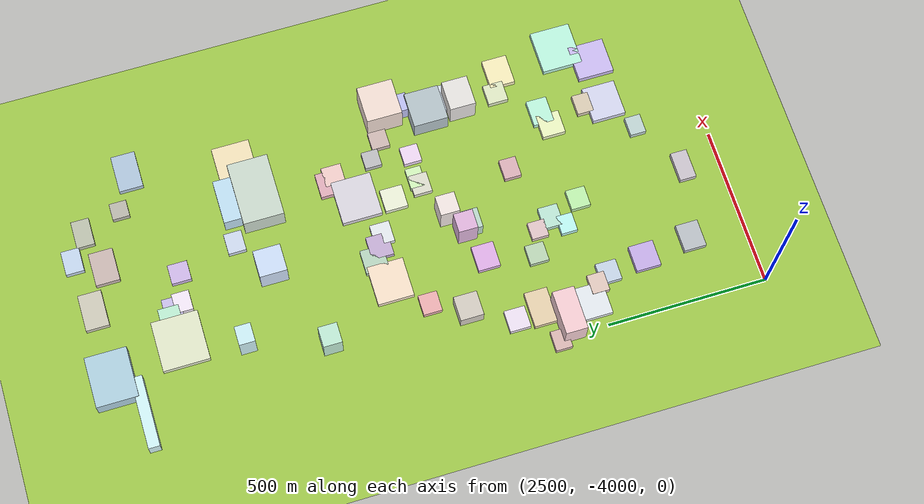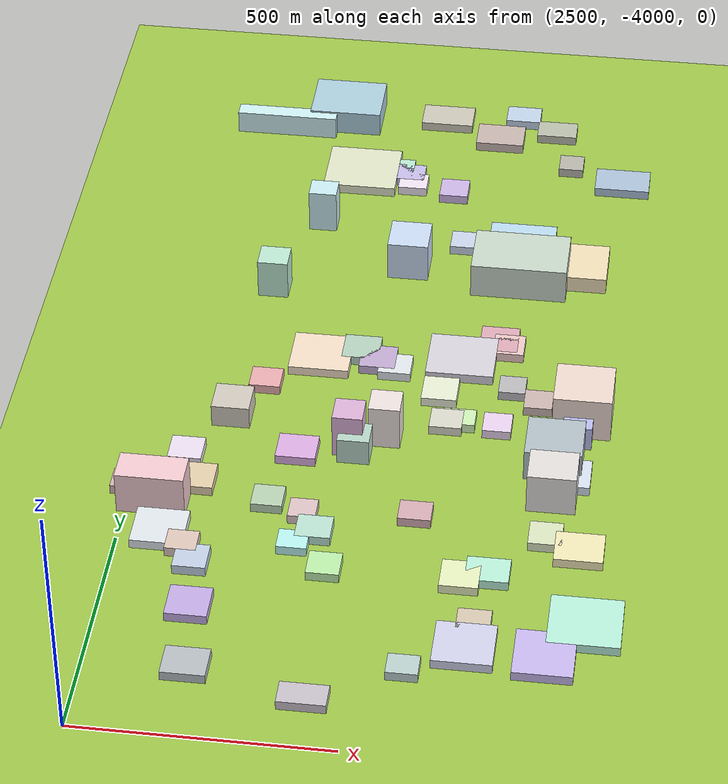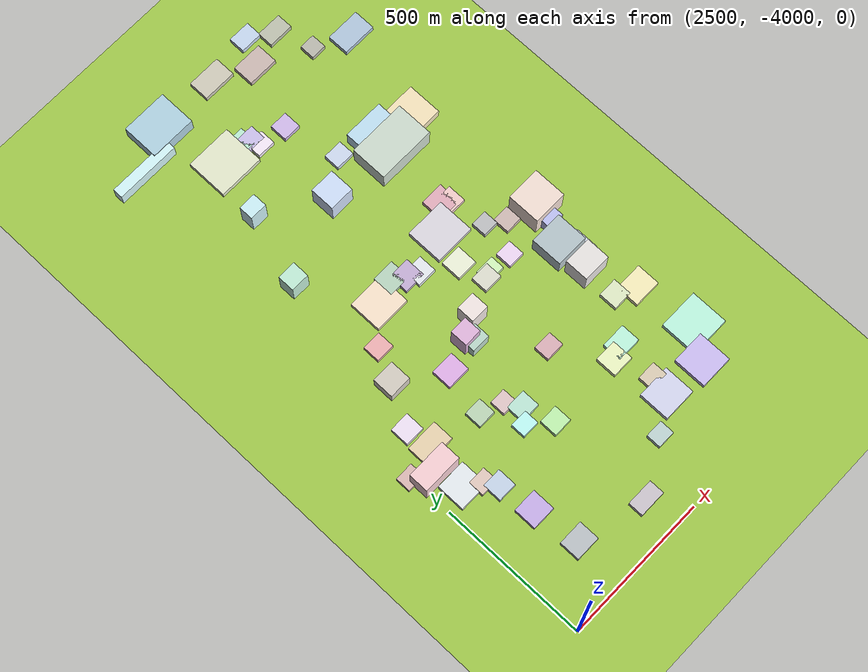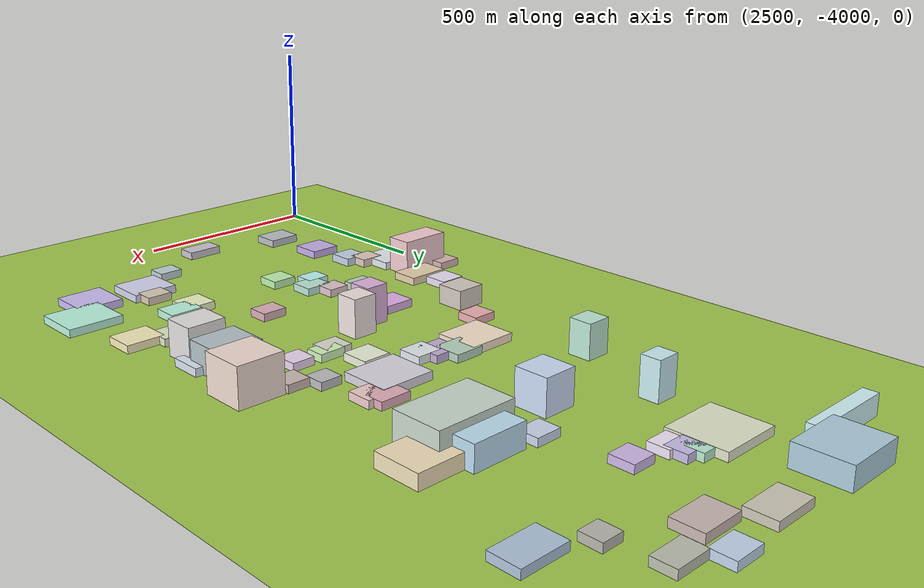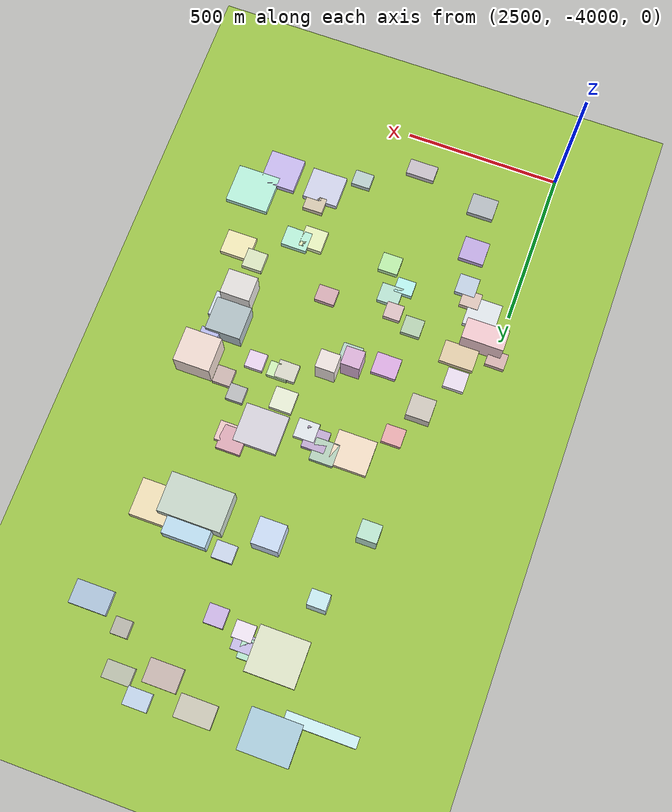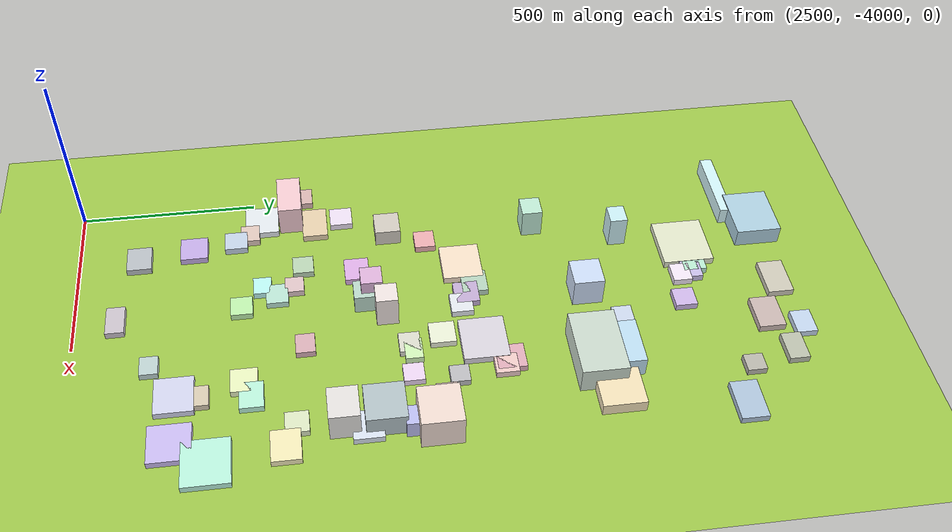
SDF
<sdf version="1.9">
 <world name="city_map">
  <model name="ground_plane">
   <static>1</static>
   <link name="link">
    <collision name="collision">
     <geometry><plane><normal>0 0 1</normal><size>11000 11000</size></plane></geometry>
    </collision>
    <visual name="visual">
     <geometry><plane><normal>0 0 1</normal><size>11000 11000</size></plane></geometry>
     <material>
      <ambient>0.551 0.712 0.210 1</ambient>
      <diffuse>0.651 0.812 0.310 1</diffuse>
      <specular>0.1 0.1 0.05 1</specular>
     </material>
    </visual>
   </link>
  </model>
  <model name="building_820799062">
   <static>1</static>
   <pose>3198.5259221905694 -2600.2883052691195 38.90549375745029 0 0 0</pose>
   <link name="link">
    <collision name="collision">
     <geometry><box><size>201.4091957852101 126.56220000020113 77.81098751490057</size></box></geometry>
    </collision>
    <visual name="visual">
     <cast_shadows>false</cast_shadows>
     <geometry><box><size>201.4091957852101 126.56220000020113 77.81098751490057</size></box></geometry>
     <material>
      <ambient>0.717 0.777 0.724 1</ambient>
      <diffuse>0.817 0.877 0.824 1</diffuse>
      <specular>0.245 0.263 0.247 1</specular>
      <emissive>0.01 0.01 0.01 1</emissive>
     </material>
    </visual>
   </link>
  </model>
  <model name="building_193322267">
   <static>1</static>
   <pose>2816.7143150049437 -2262.6003828262383 10.5 0 0 0</pose>
   <link name="link">
    <collision name="collision">
     <geometry><box><size>157.74210000019195 144.04531904951838 21.0</size></box></geometry>
    </collision>
    <visual name="visual">
     <cast_shadows>false</cast_shadows>
     <geometry><box><size>157.74210000019195 144.04531904951838 21.0</size></box></geometry>
     <material>
      <ambient>0.811 0.833 0.719 1</ambient>
      <diffuse>0.911 0.933 0.819 1</diffuse>
      <specular>0.273 0.280 0.246 1</specular>
      <emissive>0.01 0.01 0.01 1</emissive>
     </material>
    </visual>
   </link>
  </model>
  <model name="building_227003293">
   <static>1</static>
   <pose>2755.3304316372355 -2042.1860076679204 27.24662194095261 0 0 0</pose>
   <link name="link">
    <collision name="collision">
     <geometry><box><size>157.74210000019195 128.0040373553865 54.49324388190522</size></box></geometry>
    </collision>
    <visual name="visual">
     <cast_shadows>false</cast_shadows>
     <geometry><box><size>157.74210000019195 128.0040373553865 54.49324388190522</size></box></geometry>
     <material>
      <ambient>0.605 0.741 0.802 1</ambient>
      <diffuse>0.705 0.841 0.902 1</diffuse>
      <specular>0.212 0.252 0.270 1</specular>
      <emissive>0.01 0.01 0.01 1</emissive>
     </material>
    </visual>
   </link>
  </model>
  <model name="building_514474622">
   <static>1</static>
   <pose>3413.9467336202656 -3635.5864320987785 10.0 0 0 0</pose>
   <link name="link">
    <collision name="collision">
     <geometry><box><size>138.53909999977532 127.05261490969195 20</size></box></geometry>
    </collision>
    <visual name="visual">
     <cast_shadows>false</cast_shadows>
     <geometry><box><size>138.53909999977532 127.05261490969195 20</size></box></geometry>
     <material>
      <ambient>0.656 0.887 0.801 1</ambient>
      <diffuse>0.756 0.987 0.901 1</diffuse>
      <specular>0.227 0.296 0.270 1</specular>
      <emissive>0.01 0.01 0.01 1</emissive>
     </material>
    </visual>
   </link>
  </model>
  <model name="building_360172534">
   <static>1</static>
   <pose>3104.6213638431473 -2890.511129726861 10.5 0 0 0</pose>
   <link name="link">
    <collision name="collision">
     <geometry><box><size>139.130528034913 125.49659999957896 21.0</size></box></geometry>
    </collision>
    <visual name="visual">
     <cast_shadows>false</cast_shadows>
     <geometry><box><size>139.130528034913 125.49659999957896 21.0</size></box></geometry>
     <material>
      <ambient>0.779 0.764 0.801 1</ambient>
      <diffuse>0.879 0.864 0.901 1</diffuse>
      <specular>0.264 0.259 0.270 1</specular>
      <emissive>0.01 0.01 0.01 1</emissive>
     </material>
    </visual>
   </link>
  </model>
  <model name="building_925936">
   <static>1</static>
   <pose>3318.8623318397244 -2564.2043511727593 18.04592588511561 0 0 0</pose>
   <link name="link">
    <collision name="collision">
     <geometry><box><size>125.78832380763946 118.1151000000753 36.09185177023122</size></box></geometry>
    </collision>
    <visual name="visual">
     <cast_shadows>false</cast_shadows>
     <geometry><box><size>125.78832380763946 118.1151000000753 36.09185177023122</size></box></geometry>
     <material>
      <ambient>0.881 0.814 0.656 1</ambient>
      <diffuse>0.981 0.914 0.756 1</diffuse>
      <specular>0.294 0.274 0.227 1</specular>
      <emissive>0.01 0.01 0.01 1</emissive>
     </material>
    </visual>
   </link>
  </model>
  <model name="building_866636865">
   <static>1</static>
   <pose>2816.454313349304 -2913.8371998999583 10.0 0 0 0</pose>
   <link name="link">
    <collision name="collision">
     <geometry><box><size>124.02015107172969 112.69829999987024 20</size></box></geometry>
    </collision>
    <visual name="visual">
     <cast_shadows>false</cast_shadows>
     <geometry><box><size>124.02015107172969 112.69829999987024 20</size></box></geometry>
     <material>
      <ambient>0.897 0.811 0.718 1</ambient>
      <diffuse>0.997 0.911 0.818 1</diffuse>
      <specular>0.299 0.273 0.245 1</specular>
      <emissive>0.01 0.01 0.01 1</emissive>
     </material>
    </visual>
   </link>
  </model>
  <model name="building_616895335">
   <static>1</static>
   <pose>3364.934305585343 -3041.411046576958 48.78711392190627 0 0 0</pose>
   <link name="link">
    <collision name="collision">
     <geometry><box><size>117.58230000015857 111.9183806262184 97.57422784381254</size></box></geometry>
    </collision>
    <visual name="visual">
     <cast_shadows>false</cast_shadows>
     <geometry><box><size>117.58230000015857 111.9183806262184 97.57422784381254</size></box></geometry>
     <material>
      <ambient>0.876 0.794 0.752 1</ambient>
      <diffuse>0.976 0.894 0.852 1</diffuse>
      <specular>0.293 0.268 0.256 1</specular>
      <emissive>0.01 0.01 0.01 1</emissive>
     </material>
    </visual>
   </link>
  </model>
  <model name="building_867604188">
   <static>1</static>
   <pose>3345.2290703681592 -3727.75109949558 10.0 0 0 0</pose>
   <link name="link">
    <collision name="collision">
     <geometry><box><size>114.01920000032106 113.85432592459645 20</size></box></geometry>
    </collision>
    <visual name="visual">
     <cast_shadows>false</cast_shadows>
     <geometry><box><size>114.01920000032106 113.85432592459645 20</size></box></geometry>
     <material>
      <ambient>0.720 0.663 0.876 1</ambient>
      <diffuse>0.820 0.763 0.976 1</diffuse>
      <specular>0.246 0.229 0.293 1</specular>
      <emissive>0.01 0.01 0.01 1</emissive>
     </material>
    </visual>
   </link>
  </model>
  <model name="building_701919242">
   <static>1</static>
   <pose>3195.635340450379 -2526.269588740869 30.143880471730004 0 0 0</pose>
   <link name="link">
    <collision name="collision">
     <geometry><box><size>140.10709896764706 89.38830000035836 60.28776094346001</size></box></geometry>
    </collision>
    <visual name="visual">
     <cast_shadows>false</cast_shadows>
     <geometry><box><size>140.10709896764706 89.38830000035836 60.28776094346001</size></box></geometry>
     <material>
      <ambient>0.668 0.801 0.876 1</ambient>
      <diffuse>0.768 0.901 0.976 1</diffuse>
      <specular>0.230 0.270 0.293 1</specular>
      <emissive>0.01 0.01 0.01 1</emissive>
     </material>
    </visual>
   </link>
  </model>
  <model name="building_134325877">
   <static>1</static>
   <pose>3318.2334567907187 -3177.278644844502 34.500290835098355 0 0 0</pose>
   <link name="link">
    <collision name="collision">
     <geometry><box><size>113.94957292559126 108.46920000013682 69.00058167019671</size></box></geometry>
    </collision>
    <visual name="visual">
     <cast_shadows>false</cast_shadows>
     <geometry><box><size>113.94957292559126 108.46920000013682 69.00058167019671</size></box></geometry>
     <material>
      <ambient>0.626 0.686 0.708 1</ambient>
      <diffuse>0.726 0.786 0.808 1</diffuse>
      <specular>0.218 0.236 0.242 1</specular>
      <emissive>0.01 0.01 0.01 1</emissive>
     </material>
    </visual>
   </link>
  </model>
  <model name="building_260466636">
   <static>1</static>
   <pose>3196.1812770645465 -3719.7679565255917 10.0 0 0 0</pose>
   <link name="link">
    <collision name="collision">
     <geometry><box><size>114.46910617615677 105.28349999997744 20</size></box></geometry>
    </collision>
    <visual name="visual">
     <cast_shadows>false</cast_shadows>
     <geometry><box><size>114.46910617615677 105.28349999997744 20</size></box></geometry>
     <material>
      <ambient>0.758 0.766 0.864 1</ambient>
      <diffuse>0.858 0.866 0.964 1</diffuse>
      <specular>0.257 0.260 0.289 1</specular>
      <emissive>0.01 0.01 0.01 1</emissive>
     </material>
    </visual>
   </link>
  </model>
  <model name="building_255829521">
   <static>1</static>
   <pose>2581.3989476869374 -3474.86210812795 10.0 0 0 0</pose>
   <link name="link">
    <collision name="collision">
     <geometry><box><size>102.90810000061157 96.25452157633508 20</size></box></geometry>
    </collision>
    <visual name="visual">
     <cast_shadows>false</cast_shadows>
     <geometry><box><size>102.90810000061157 96.25452157633508 20</size></box></geometry>
     <material>
      <ambient>0.820 0.844 0.865 1</ambient>
      <diffuse>0.920 0.944 0.965 1</diffuse>
      <specular>0.276 0.283 0.290 1</specular>
      <emissive>0.01 0.01 0.01 1</emissive>
     </material>
    </visual>
   </link>
  </model>
  <model name="building_89238854">
   <static>1</static>
   <pose>2553.0473142706574 -3389.08533566538 45.79307164000474 0 0 0</pose>
   <link name="link">
    <collision name="collision">
     <geometry><box><size>135.02039999966797 67.72398902646299 91.58614328000948</size></box></geometry>
    </collision>
    <visual name="visual">
     <cast_shadows>false</cast_shadows>
     <geometry><box><size>135.02039999966797 67.72398902646299 91.58614328000948</size></box></geometry>
     <material>
      <ambient>0.890 0.731 0.754 1</ambient>
      <diffuse>0.990 0.831 0.854 1</diffuse>
      <specular>0.297 0.249 0.256 1</specular>
      <emissive>0.01 0.01 0.01 1</emissive>
     </material>
    </visual>
   </link>
  </model>
  <model name="building_804262957">
   <static>1</static>
   <pose>3392.5714661436136 -2238.60517388963 10.0 0 0 0</pose>
   <link name="link">
    <collision name="collision">
     <geometry><box><size>118.56300734236116 74.7474000004118 20</size></box></geometry>
    </collision>
    <visual name="visual">
     <cast_shadows>false</cast_shadows>
     <geometry><box><size>118.56300734236116 74.7474000004118 20</size></box></geometry>
     <material>
      <ambient>0.610 0.696 0.785 1</ambient>
      <diffuse>0.710 0.796 0.885 1</diffuse>
      <specular>0.213 0.239 0.266 1</specular>
      <emissive>0.01 0.01 0.01 1</emissive>
     </material>
    </visual>
   </link>
  </model>
  <model name="building_255797813">
   <static>1</static>
   <pose>2983.441319793403 -2036.7330084644377 10.0 0 0 0</pose>
   <link name="link">
    <collision name="collision">
     <geometry><box><size>114.78775089567878 71.68380000010188 20</size></box></geometry>
    </collision>
    <visual name="visual">
     <cast_shadows>false</cast_shadows>
     <geometry><box><size>114.78775089567878 71.68380000010188 20</size></box></geometry>
     <material>
      <ambient>0.732 0.715 0.651 1</ambient>
      <diffuse>0.832 0.815 0.751 1</diffuse>
      <specular>0.249 0.244 0.225 1</specular>
      <emissive>0.01 0.01 0.01 1</emissive>
     </material>
    </visual>
   </link>
  </model>
  <model name="building_238843699">
   <static>1</static>
   <pose>2608.144877773546 -3321.065545788727 10.0 0 0 0</pose>
   <link name="link">
    <collision name="collision">
     <geometry><box><size>109.74898464261814 71.81700000008107 20</size></box></geometry>
    </collision>
    <visual name="visual">
     <cast_shadows>false</cast_shadows>
     <geometry><box><size>109.74898464261814 71.81700000008107 20</size></box></geometry>
     <material>
      <ambient>0.830 0.745 0.605 1</ambient>
      <diffuse>0.930 0.845 0.705 1</diffuse>
      <specular>0.279 0.254 0.211 1</specular>
      <emissive>0.01 0.01 0.01 1</emissive>
     </material>
    </visual>
   </link>
  </model>
  <model name="building_465500429">
   <static>1</static>
   <pose>3322.805494264007 -3283.772991290367 44.377895383880265 0 0 0</pose>
   <link name="link">
    <collision name="collision">
     <geometry><box><size>96.27808136601563 81.66269999998832 88.75579076776053</size></box></geometry>
    </collision>
    <visual name="visual">
     <cast_shadows>false</cast_shadows>
     <geometry><box><size>96.27808136601563 81.66269999998832 88.75579076776053</size></box></geometry>
     <material>
      <ambient>0.826 0.813 0.802 1</ambient>
      <diffuse>0.926 0.913 0.902 1</diffuse>
      <specular>0.278 0.274 0.270 1</specular>
      <emissive>0.01 0.01 0.01 1</emissive>
     </material>
    </visual>
   </link>
  </model>
  <model name="building_185755979">
   <static>1</static>
   <pose>2625.891158616951 -2111.76326781798 25.399354886820756 0 0 0</pose>
   <link name="link">
    <collision name="collision">
     <geometry><box><size>222.071977848426 35.24250000014462 50.79870977364151</size></box></geometry>
    </collision>
    <visual name="visual">
     <cast_shadows>false</cast_shadows>
     <geometry><box><size>222.071977848426 35.24250000014462 50.79870977364151</size></box></geometry>
     <material>
      <ambient>0.747 0.883 0.898 1</ambient>
      <diffuse>0.847 0.983 0.998 1</diffuse>
      <specular>0.254 0.295 0.299 1</specular>
      <emissive>0.01 0.01 0.01 1</emissive>
     </material>
    </visual>
   </link>
  </model>
  <model name="building_990601595">
   <static>1</static>
   <pose>3109.015680080802 -2099.467703478093 10.5 0 0 0</pose>
   <link name="link">
    <collision name="collision">
     <geometry><box><size>105.34293344926608 74.19240000023564 21.0</size></box></geometry>
    </collision>
    <visual name="visual">
     <cast_shadows>false</cast_shadows>
     <geometry><box><size>105.34293344926608 74.19240000023564 21.0</size></box></geometry>
     <material>
      <ambient>0.718 0.644 0.622 1</ambient>
      <diffuse>0.818 0.744 0.722 1</diffuse>
      <specular>0.245 0.223 0.217 1</specular>
      <emissive>0.01 0.01 0.01 1</emissive>
     </material>
    </visual>
   </link>
  </model>
  <model name="building_866490277">
   <static>1</static>
   <pose>3387.422796054131 -3435.683871606462 10.0 0 0 0</pose>
   <link name="link">
    <collision name="collision">
     <geometry><box><size>95.17245753805535 78.98759999948624 20</size></box></geometry>
    </collision>
    <visual name="visual">
     <cast_shadows>false</cast_shadows>
     <geometry><box><size>95.17245753805535 78.98759999948624 20</size></box></geometry>
     <material>
      <ambient>0.893 0.857 0.659 1</ambient>
      <diffuse>0.993 0.957 0.759 1</diffuse>
      <specular>0.298 0.287 0.228 1</specular>
      <emissive>0.01 0.01 0.01 1</emissive>
     </material>
    </visual>
   </link>
  </model>
  <model name="building_688387087">
   <static>1</static>
   <pose>2959.485306996828 -2581.7761854967657 43.80884166424795 0 0 0</pose>
   <link name="link">
    <collision name="collision">
     <geometry><box><size>85.77614835864755 85.01489999972733 87.6176833284959</size></box></geometry>
    </collision>
    <visual name="visual">
     <cast_shadows>false</cast_shadows>
     <geometry><box><size>85.77614835864755 85.01489999972733 87.6176833284959</size></box></geometry>
     <material>
      <ambient>0.728 0.796 0.898 1</ambient>
      <diffuse>0.828 0.896 0.998 1</diffuse>
      <specular>0.248 0.269 0.299 1</specular>
      <emissive>0.01 0.01 0.01 1</emissive>
     </material>
    </visual>
   </link>
  </model>
  <model name="building_377440515">
   <static>1</static>
   <pose>3350.676470633934 -3225.4560422009217 10.0 0 0 0</pose>
   <link name="link">
    <collision name="collision">
     <geometry><box><size>87.40939747533963 81.37410000055922 20</size></box></geometry>
    </collision>
    <visual name="visual">
     <cast_shadows>false</cast_shadows>
     <geometry><box><size>87.40939747533963 81.37410000055922 20</size></box></geometry>
     <material>
      <ambient>0.783 0.824 0.880 1</ambient>
      <diffuse>0.883 0.924 0.980 1</diffuse>
      <specular>0.265 0.277 0.294 1</specular>
      <emissive>0.01 0.01 0.01 1</emissive>
     </material>
    </visual>
   </link>
  </model>
  <model name="building_87824537">
   <static>1</static>
   <pose>2672.7573078105015 -3672.6810226842267 10.0 0 0 0</pose>
   <link name="link">
    <collision name="collision">
     <geometry><box><size>81.43553326675637 77.58900000049351 20</size></box></geometry>
    </collision>
    <visual name="visual">
     <cast_shadows>false</cast_shadows>
     <geometry><box><size>81.43553326675637 77.58900000049351 20</size></box></geometry>
     <material>
      <ambient>0.699 0.606 0.836 1</ambient>
      <diffuse>0.799 0.706 0.936 1</diffuse>
      <specular>0.240 0.212 0.281 1</specular>
      <emissive>0.01 0.01 0.01 1</emissive>
     </material>
    </visual>
   </link>
  </model>
  <model name="building_775359890">
   <static>1</static>
   <pose>3175.943610927404 -2827.6557440913048 10.0 0 0 0</pose>
   <link name="link">
    <collision name="collision">
     <geometry><box><size>78.73230000044629 78.28555537813666 20</size></box></geometry>
    </collision>
    <visual name="visual">
     <cast_shadows>false</cast_shadows>
     <geometry><box><size>78.73230000044629 78.28555537813666 20</size></box></geometry>
     <material>
      <ambient>0.807 0.603 0.656 1</ambient>
      <diffuse>0.907 0.703 0.756 1</diffuse>
      <specular>0.272 0.211 0.227 1</specular>
      <emissive>0.01 0.01 0.01 1</emissive>
     </material>
    </visual>
   </link>
  </model>
  <model name="building_112989660">
   <static>1</static>
   <pose>2694.3275088605214 -3828.5496070511495 10.0 0 0 0</pose>
   <link name="link">
    <collision name="collision">
     <geometry><box><size>85.31803658484269 69.98549999997294 20</size></box></geometry>
    </collision>
    <visual name="visual">
     <cast_shadows>false</cast_shadows>
     <geometry><box><size>85.31803658484269 69.98549999997294 20</size></box></geometry>
     <material>
      <ambient>0.652 0.676 0.697 1</ambient>
      <diffuse>0.752 0.776 0.797 1</diffuse>
      <specular>0.225 0.233 0.239 1</specular>
      <emissive>0.01 0.01 0.01 1</emissive>
     </material>
    </visual>
   </link>
  </model>
  <model name="building_105063547">
   <static>1</static>
   <pose>2664.6664421031146 -3111.7344246864905 24.75 0 0 0</pose>
   <link name="link">
    <collision name="collision">
     <geometry><box><size>76.75650000022927 72.8497233540689 49.5</size></box></geometry>
    </collision>
    <visual name="visual">
     <cast_shadows>false</cast_shadows>
     <geometry><box><size>76.75650000022927 72.8497233540689 49.5</size></box></geometry>
     <material>
      <ambient>0.749 0.720 0.678 1</ambient>
      <diffuse>0.849 0.820 0.778 1</diffuse>
      <specular>0.255 0.246 0.233 1</specular>
      <emissive>0.01 0.01 0.01 1</emissive>
     </material>
    </visual>
   </link>
  </model>
  <model name="building_574319814">
   <static>1</static>
   <pose>2810.0223482835218 -3212.316166231181 10.0 0 0 0</pose>
   <link name="link">
    <collision name="collision">
     <geometry><box><size>80.01528912618062 69.03089999985923 20</size></box></geometry>
    </collision>
    <visual name="visual">
     <cast_shadows>false</cast_shadows>
     <geometry><box><size>80.01528912618062 69.03089999985923 20</size></box></geometry>
     <material>
      <ambient>0.800 0.612 0.832 1</ambient>
      <diffuse>0.900 0.712 0.932 1</diffuse>
      <specular>0.270 0.214 0.280 1</specular>
      <emissive>0.01 0.01 0.01 1</emissive>
     </material>
    </visual>
   </link>
  </model>
  <model name="building_51356314">
   <static>1</static>
   <pose>2896.8695606188044 -2887.1404408505177 10.0 0 0 0</pose>
   <link name="link">
    <collision name="collision">
     <geometry><box><size>76.18480700177818 71.71710000049103 20</size></box></geometry>
    </collision>
    <visual name="visual">
     <cast_shadows>false</cast_shadows>
     <geometry><box><size>76.18480700177818 71.71710000049103 20</size></box></geometry>
     <material>
      <ambient>0.644 0.757 0.674 1</ambient>
      <diffuse>0.744 0.857 0.774 1</diffuse>
      <specular>0.223 0.257 0.232 1</specular>
      <emissive>0.01 0.01 0.01 1</emissive>
     </material>
    </visual>
   </link>
  </model>
  <model name="building_4821098">
   <static>1</static>
   <pose>3169.137943149972 -3537.201425754713 10.0 0 0 0</pose>
   <link name="link">
    <collision name="collision">
     <geometry><box><size>75.12705022410756 72.64949999955661 20</size></box></geometry>
    </collision>
    <visual name="visual">
     <cast_shadows>false</cast_shadows>
     <geometry><box><size>75.12705022410756 72.64949999955661 20</size></box></geometry>
     <material>
      <ambient>0.851 0.890 0.684 1</ambient>
      <diffuse>0.951 0.990 0.784 1</diffuse>
      <specular>0.285 0.297 0.235 1</specular>
      <emissive>0.01 0.01 0.01 1</emissive>
     </material>
    </visual>
   </link>
  </model>
  <model name="building_14629309">
   <static>1</static>
   <pose>3220.030390384196 -3519.0115573477306 10.0 0 0 0</pose>
   <link name="link">
    <collision name="collision">
     <geometry><box><size>83.98764335073612 64.83510000051496 20</size></box></geometry>
    </collision>
    <visual name="visual">
     <cast_shadows>false</cast_shadows>
     <geometry><box><size>83.98764335073612 64.83510000051496 20</size></box></geometry>
     <material>
      <ambient>0.661 0.888 0.792 1</ambient>
      <diffuse>0.761 0.988 0.892 1</diffuse>
      <specular>0.228 0.296 0.268 1</specular>
      <emissive>0.01 0.01 0.01 1</emissive>
     </material>
    </visual>
   </link>
  </model>
  <model name="building_454400010">
   <static>1</static>
   <pose>2934.4734717305787 -2914.813769343624 10.0 0 0 0</pose>
   <link name="link">
    <collision name="collision">
     <geometry><box><size>73.92600000027727 69.2918277361477 20</size></box></geometry>
    </collision>
    <visual name="visual">
     <cast_shadows>false</cast_shadows>
     <geometry><box><size>73.92600000027727 69.2918277361477 20</size></box></geometry>
     <material>
      <ambient>0.693 0.605 0.761 1</ambient>
      <diffuse>0.793 0.705 0.861 1</diffuse>
      <specular>0.238 0.211 0.258 1</specular>
      <emissive>0.01 0.01 0.01 1</emissive>
     </material>
    </visual>
   </link>
  </model>
  <model name="building_708957084">
   <static>1</static>
   <pose>3071.6779398094523 -2999.755900851759 10.0 0 0 0</pose>
   <link name="link">
    <collision name="collision">
     <geometry><box><size>72.03028539650325 70.9734000004758 20</size></box></geometry>
    </collision>
    <visual name="visual">
     <cast_shadows>false</cast_shadows>
     <geometry><box><size>72.03028539650325 70.9734000004758 20</size></box></geometry>
     <material>
      <ambient>0.850 0.871 0.776 1</ambient>
      <diffuse>0.950 0.971 0.876 1</diffuse>
      <specular>0.285 0.291 0.263 1</specular>
      <emissive>0.01 0.01 0.01 1</emissive>
     </material>
    </visual>
   </link>
  </model>
  <model name="building_221679484">
   <static>1</static>
   <pose>3234.155434673218 -2062.206901310623 10.0 0 0 0</pose>
   <link name="link">
    <collision name="collision">
     <geometry><box><size>87.39536227226645 55.55550000012488 20</size></box></geometry>
    </collision>
    <visual name="visual">
     <cast_shadows>false</cast_shadows>
     <geometry><box><size>87.39536227226645 55.55550000012488 20</size></box></geometry>
     <material>
      <ambient>0.662 0.678 0.605 1</ambient>
      <diffuse>0.762 0.778 0.705 1</diffuse>
      <specular>0.229 0.233 0.211 1</specular>
      <emissive>0.01 0.01 0.01 1</emissive>
     </material>
    </visual>
   </link>
  </model>
  <model name="building_369796178">
   <static>1</static>
   <pose>2919.8071818399503 -3884.9401405083026 10.0 0 0 0</pose>
   <link name="link">
    <collision name="collision">
     <geometry><box><size>92.74050000009737 51.79168659900735 20</size></box></geometry>
    </collision>
    <visual name="visual">
     <cast_shadows>false</cast_shadows>
     <geometry><box><size>92.74050000009737 51.79168659900735 20</size></box></geometry>
     <material>
      <ambient>0.719 0.690 0.726 1</ambient>
      <diffuse>0.819 0.790 0.826 1</diffuse>
      <specular>0.246 0.237 0.248 1</specular>
      <emissive>0.01 0.01 0.01 1</emissive>
     </material>
    </visual>
   </link>
  </model>
  <model name="building_992371193">
   <static>1</static>
   <pose>2592.693140917838 -3242.6153011420242 10.0 0 0 0</pose>
   <link name="link">
    <collision name="collision">
     <geometry><box><size>67.47177495122536 64.7241000000065 20</size></box></geometry>
    </collision>
    <visual name="visual">
     <cast_shadows>false</cast_shadows>
     <geometry><box><size>67.47177495122536 64.7241000000065 20</size></box></geometry>
     <material>
      <ambient>0.858 0.810 0.882 1</ambient>
      <diffuse>0.958 0.910 0.982 1</diffuse>
      <specular>0.287 0.273 0.295 1</specular>
      <emissive>0.01 0.01 0.01 1</emissive>
     </material>
    </visual>
   </link>
  </model>
  <model name="building_345663137">
   <static>1</static>
   <pose>2895.914732080186 -2251.994106661555 10.0 0 0 0</pose>
   <link name="link">
    <collision name="collision">
     <geometry><box><size>67.21049999988082 64.03208879740903 20</size></box></geometry>
    </collision>
    <visual name="visual">
     <cast_shadows>false</cast_shadows>
     <geometry><box><size>67.21049999988082 64.03208879740903 20</size></box></geometry>
     <material>
      <ambient>0.659 0.855 0.751 1</ambient>
      <diffuse>0.759 0.955 0.851 1</diffuse>
      <specular>0.228 0.286 0.255 1</specular>
      <emissive>0.01 0.01 0.01 1</emissive>
     </material>
    </visual>
   </link>
  </model>
  <model name="building_790412395">
   <static>1</static>
   <pose>3154.1043268936273 -2011.9361976849898 10.0 0 0 0</pose>
   <link name="link">
    <collision name="collision">
     <geometry><box><size>76.2117607902695 56.39910000051884 20</size></box></geometry>
    </collision>
    <visual name="visual">
     <cast_shadows>false</cast_shadows>
     <geometry><box><size>76.2117607902695 56.39910000051884 20</size></box></geometry>
     <material>
      <ambient>0.694 0.768 0.860 1</ambient>
      <diffuse>0.794 0.868 0.960 1</diffuse>
      <specular>0.238 0.260 0.288 1</specular>
      <emissive>0.01 0.01 0.01 1</emissive>
     </material>
    </visual>
   </link>
  </model>
  <model name="building_276417448">
   <static>1</static>
   <pose>2876.4797286508833 -3440.373501382131 10.0 0 0 0</pose>
   <link name="link">
    <collision name="collision">
     <geometry><box><size>69.3062278619842 61.54949999997683 20</size></box></geometry>
    </collision>
    <visual name="visual">
     <cast_shadows>false</cast_shadows>
     <geometry><box><size>69.3062278619842 61.54949999997683 20</size></box></geometry>
     <material>
      <ambient>0.660 0.828 0.762 1</ambient>
      <diffuse>0.760 0.928 0.862 1</diffuse>
      <specular>0.228 0.278 0.259 1</specular>
      <emissive>0.01 0.01 0.01 1</emissive>
     </material>
    </visual>
   </link>
  </model>
  <model name="building_814313436">
   <static>1</static>
   <pose>2656.212531393331 -3551.5442014983737 10.5 0 0 0</pose>
   <link name="link">
    <collision name="collision">
     <geometry><box><size>65.05624212949027 64.51319999990801 21.0</size></box></geometry>
    </collision>
    <visual name="visual">
     <cast_shadows>false</cast_shadows>
     <geometry><box><size>65.05624212949027 64.51319999990801 21.0</size></box></geometry>
     <material>
      <ambient>0.697 0.757 0.834 1</ambient>
      <diffuse>0.797 0.857 0.934 1</diffuse>
      <specular>0.239 0.257 0.280 1</specular>
      <emissive>0.01 0.01 0.01 1</emissive>
     </material>
    </visual>
   </link>
  </model>
  <model name="building_420522079">
   <static>1</static>
   <pose>2971.7474793696815 -2933.0950095331573 10.0 0 0 0</pose>
   <link name="link">
    <collision name="collision">
     <geometry><box><size>67.08840000003136 61.66890748881607 20</size></box></geometry>
    </collision>
    <visual name="visual">
     <cast_shadows>false</cast_shadows>
     <geometry><box><size>67.08840000003136 61.66890748881607 20</size></box></geometry>
     <material>
      <ambient>0.821 0.843 0.863 1</ambient>
      <diffuse>0.921 0.943 0.963 1</diffuse>
      <specular>0.276 0.283 0.289 1</specular>
      <emissive>0.01 0.01 0.01 1</emissive>
     </material>
    </visual>
   </link>
  </model>
  <model name="building_339687453">
   <static>1</static>
   <pose>3320.3035363967083 -3404.945843048612 10.0 0 0 0</pose>
   <link name="link">
    <collision name="collision">
     <geometry><box><size>65.2435076107048 63.19230000024589 20</size></box></geometry>
    </collision>
    <visual name="visual">
     <cast_shadows>false</cast_shadows>
     <geometry><box><size>65.2435076107048 63.19230000024589 20</size></box></geometry>
     <material>
      <ambient>0.799 0.840 0.695 1</ambient>
      <diffuse>0.899 0.940 0.795 1</diffuse>
      <specular>0.270 0.282 0.239 1</specular>
      <emissive>0.01 0.01 0.01 1</emissive>
     </material>
    </visual>
   </link>
  </model>
  <model name="building_332651101">
   <static>1</static>
   <pose>3197.7545255010004 -2843.101690152251 10.0 0 0 0</pose>
   <link name="link">
    <collision name="collision">
     <geometry><box><size>63.32550000022508 62.647761407545325 20</size></box></geometry>
    </collision>
    <visual name="visual">
     <cast_shadows>false</cast_shadows>
     <geometry><box><size>63.32550000022508 62.647761407545325 20</size></box></geometry>
     <material>
      <ambient>0.873 0.729 0.717 1</ambient>
      <diffuse>0.973 0.829 0.817 1</diffuse>
      <specular>0.292 0.249 0.245 1</specular>
      <emissive>0.01 0.01 0.01 1</emissive>
     </material>
    </visual>
   </link>
  </model>
  <model name="building_377153032">
   <static>1</static>
   <pose>2909.874551045524 -3539.5107162882864 10.0 0 0 0</pose>
   <link name="link">
    <collision name="collision">
     <geometry><box><size>64.42740974437076 60.65039999972299 20</size></box></geometry>
    </collision>
    <visual name="visual">
     <cast_shadows>false</cast_shadows>
     <geometry><box><size>64.42740974437076 60.65039999972299 20</size></box></geometry>
     <material>
      <ambient>0.672 0.876 0.605 1</ambient>
      <diffuse>0.772 0.976 0.705 1</diffuse>
      <specular>0.232 0.293 0.212 1</specular>
      <emissive>0.01 0.01 0.01 1</emissive>
     </material>
    </visual>
   </link>
  </model>
  <model name="building_411660024">
   <static>1</static>
   <pose>2977.91357070328 -3141.5968201372575 48.522260401488005 0 0 0</pose>
   <link name="link">
    <collision name="collision">
     <geometry><box><size>63.403200000344384 60.542766787984355 97.04452080297601</size></box></geometry>
    </collision>
    <visual name="visual">
     <cast_shadows>false</cast_shadows>
     <geometry><box><size>63.403200000344384 60.542766787984355 97.04452080297601</size></box></geometry>
     <material>
      <ambient>0.869 0.823 0.812 1</ambient>
      <diffuse>0.969 0.923 0.912 1</diffuse>
      <specular>0.291 0.277 0.274 1</specular>
      <emissive>0.01 0.01 0.01 1</emissive>
     </material>
    </visual>
   </link>
  </model>
  <model name="building_641939861">
   <static>1</static>
   <pose>3094.352077891581 -3091.470539239853 10.0 0 0 0</pose>
   <link name="link">
    <collision name="collision">
     <geometry><box><size>65.49602556331787 57.78660000017055 20</size></box></geometry>
    </collision>
    <visual name="visual">
     <cast_shadows>false</cast_shadows>
     <geometry><box><size>65.49602556331787 57.78660000017055 20</size></box></geometry>
     <material>
      <ambient>0.791 0.789 0.732 1</ambient>
      <diffuse>0.891 0.889 0.832 1</diffuse>
      <specular>0.267 0.267 0.250 1</specular>
      <emissive>0.01 0.01 0.01 1</emissive>
     </material>
    </visual>
   </link>
  </model>
  <model name="building_405478167">
   <static>1</static>
   <pose>3026.9383748621744 -2312.3693863410163 10.0 0 0 0</pose>
   <link name="link">
    <collision name="collision">
     <geometry><box><size>61.674553313315634 60.99449999980067 20</size></box></geometry>
    </collision>
    <visual name="visual">
     <cast_shadows>false</cast_shadows>
     <geometry><box><size>61.674553313315634 60.99449999980067 20</size></box></geometry>
     <material>
      <ambient>0.737 0.647 0.840 1</ambient>
      <diffuse>0.837 0.747 0.940 1</diffuse>
      <specular>0.251 0.224 0.282 1</specular>
      <emissive>0.01 0.01 0.01 1</emissive>
     </material>
    </visual>
   </link>
  </model>
  <model name="building_21191570">
   <static>1</static>
   <pose>2715.713043806029 -3007.6150620059348 10.0 0 0 0</pose>
   <link name="link">
    <collision name="collision">
     <geometry><box><size>63.491999999804705 58.628562076700355 20</size></box></geometry>
    </collision>
    <visual name="visual">
     <cast_shadows>false</cast_shadows>
     <geometry><box><size>63.491999999804705 58.628562076700355 20</size></box></geometry>
     <material>
      <ambient>0.854 0.610 0.621 1</ambient>
      <diffuse>0.954 0.710 0.721 1</diffuse>
      <specular>0.286 0.213 0.216 1</specular>
      <emissive>0.01 0.01 0.01 1</emissive>
     </material>
    </visual>
   </link>
  </model>
  <model name="building_255978362">
   <static>1</static>
   <pose>2923.228823730874 -3199.3676096856516 28.908399753760982 0 0 0</pose>
   <link name="link">
    <collision name="collision">
     <geometry><box><size>64.15800000048932 58.01580553601931 57.816799507521964</size></box></geometry>
    </collision>
    <visual name="visual">
     <cast_shadows>false</cast_shadows>
     <geometry><box><size>64.15800000048932 58.01580553601931 57.816799507521964</size></box></geometry>
     <material>
      <ambient>0.655 0.773 0.716 1</ambient>
      <diffuse>0.755 0.873 0.816 1</diffuse>
      <specular>0.226 0.262 0.245 1</specular>
      <emissive>0.01 0.01 0.01 1</emissive>
     </material>
    </visual>
   </link>
  </model>
  <model name="building_273901553">
   <static>1</static>
   <pose>2684.7307070172374 -2690.224933422929 43.69403753580844 0 0 0</pose>
   <link name="link">
    <collision name="collision">
     <geometry><box><size>63.476791083880606 58.39710000020659 87.38807507161688</size></box></geometry>
    </collision>
    <visual name="visual">
     <cast_shadows>false</cast_shadows>
     <geometry><box><size>63.476791083880606 58.39710000020659 87.38807507161688</size></box></geometry>
     <material>
      <ambient>0.672 0.844 0.759 1</ambient>
      <diffuse>0.772 0.944 0.859 1</diffuse>
      <specular>0.231 0.283 0.258 1</specular>
      <emissive>0.01 0.01 0.01 1</emissive>
     </material>
    </visual>
   </link>
  </model>
  <model name="building_805905501">
   <static>1</static>
   <pose>3072.760003173692 -2497.5205707790647 10.0 0 0 0</pose>
   <link name="link">
    <collision name="collision">
     <geometry><box><size>65.8119000000994 55.56116326729334 20</size></box></geometry>
    </collision>
    <visual name="visual">
     <cast_shadows>false</cast_shadows>
     <geometry><box><size>65.8119000000994 55.56116326729334 20</size></box></geometry>
     <material>
      <ambient>0.730 0.776 0.861 1</ambient>
      <diffuse>0.830 0.876 0.961 1</diffuse>
      <specular>0.249 0.263 0.288 1</specular>
      <emissive>0.01 0.01 0.01 1</emissive>
     </material>
    </visual>
   </link>
  </model>
  <model name="building_259374053">
   <static>1</static>
   <pose>2909.258321106622 -3177.2829785959702 48.39380516133414 0 0 0</pose>
   <link name="link">
    <collision name="collision">
     <geometry><box><size>60.84068771251136 60.028799999557236 96.78761032266829</size></box></geometry>
    </collision>
    <visual name="visual">
     <cast_shadows>false</cast_shadows>
     <geometry><box><size>60.84068771251136 60.028799999557236 96.78761032266829</size></box></geometry>
     <material>
      <ambient>0.799 0.630 0.785 1</ambient>
      <diffuse>0.899 0.730 0.885 1</diffuse>
      <specular>0.270 0.219 0.265 1</specular>
      <emissive>0.01 0.01 0.01 1</emissive>
     </material>
    </visual>
   </link>
  </model>
  <model name="building_469375955">
   <static>1</static>
   <pose>2774.985096037724 -3363.0216155124385 10.0 0 0 0</pose>
   <link name="link">
    <collision name="collision">
     <geometry><box><size>61.68106263758208 58.91879999999361 20</size></box></geometry>
    </collision>
    <visual name="visual">
     <cast_shadows>false</cast_shadows>
     <geometry><box><size>61.68106263758208 58.91879999999361 20</size></box></geometry>
     <material>
      <ambient>0.657 0.762 0.639 1</ambient>
      <diffuse>0.757 0.862 0.739 1</diffuse>
      <specular>0.227 0.259 0.222 1</specular>
      <emissive>0.01 0.01 0.01 1</emissive>
     </material>
    </visual>
   </link>
  </model>
  <model name="building_631806056">
   <static>1</static>
   <pose>3064.5485256119946 -3371.0823581332907 10.0 0 0 0</pose>
   <link name="link">
    <collision name="collision">
     <geometry><box><size>64.99307631062575 53.2466999999599 20</size></box></geometry>
    </collision>
    <visual name="visual">
     <cast_shadows>false</cast_shadows>
     <geometry><box><size>64.99307631062575 53.2466999999599 20</size></box></geometry>
     <material>
      <ambient>0.780 0.613 0.646 1</ambient>
      <diffuse>0.880 0.713 0.746 1</diffuse>
      <specular>0.264 0.214 0.224 1</specular>
      <emissive>0.01 0.01 0.01 1</emissive>
     </material>
    </visual>
   </link>
  </model>
  <model name="building_287329103">
   <static>1</static>
   <pose>2934.106075857804 -2297.7782954020868 10.0 0 0 0</pose>
   <link name="link">
    <collision name="collision">
     <geometry><box><size>62.548499999820706 53.693889829086864 20</size></box></geometry>
    </collision>
    <visual name="visual">
     <cast_shadows>false</cast_shadows>
     <geometry><box><size>62.548499999820706 53.693889829086864 20</size></box></geometry>
     <material>
      <ambient>0.881 0.837 0.898 1</ambient>
      <diffuse>0.981 0.937 0.998 1</diffuse>
      <specular>0.294 0.281 0.299 1</specular>
      <emissive>0.01 0.01 0.01 1</emissive>
     </material>
    </visual>
   </link>
  </model>
  <model name="building_21872129">
   <static>1</static>
   <pose>2925.784053930138 -2265.148144178139 10.0 0 0 0</pose>
   <link name="link">
    <collision name="collision">
     <geometry><box><size>60.672599999982424 54.86933777670386 20</size></box></geometry>
    </collision>
    <visual name="visual">
     <cast_shadows>false</cast_shadows>
     <geometry><box><size>60.672599999982424 54.86933777670386 20</size></box></geometry>
     <material>
      <ambient>0.717 0.675 0.847 1</ambient>
      <diffuse>0.817 0.775 0.947 1</diffuse>
      <specular>0.245 0.232 0.284 1</specular>
      <emissive>0.01 0.01 0.01 1</emissive>
     </material>
    </visual>
   </link>
  </model>
  <model name="building_585785899">
   <static>1</static>
   <pose>3207.4272750754362 -3654.6701290089586 10.0 0 0 0</pose>
   <link name="link">
    <collision name="collision">
     <geometry><box><size>64.5845273186653 51.39299999959235 20</size></box></geometry>
    </collision>
    <visual name="visual">
     <cast_shadows>false</cast_shadows>
     <geometry><box><size>64.5845273186653 51.39299999959235 20</size></box></geometry>
     <material>
      <ambient>0.778 0.723 0.628 1</ambient>
      <diffuse>0.878 0.823 0.728 1</diffuse>
      <specular>0.263 0.247 0.218 1</specular>
      <emissive>0.01 0.01 0.01 1</emissive>
     </material>
    </visual>
   </link>
  </model>
  <model name="building_968386118">
   <static>1</static>
   <pose>2631.2236988866644 -3510.1614141416912 10.5 0 0 0</pose>
   <link name="link">
    <collision name="collision">
     <geometry><box><size>61.25028966023304 53.65740000002717 21.0</size></box></geometry>
    </collision>
    <visual name="visual">
     <cast_shadows>false</cast_shadows>
     <geometry><box><size>61.25028966023304 53.65740000002717 21.0</size></box></geometry>
     <material>
      <ambient>0.810 0.711 0.668 1</ambient>
      <diffuse>0.910 0.811 0.768 1</diffuse>
      <specular>0.273 0.243 0.230 1</specular>
      <emissive>0.01 0.01 0.01 1</emissive>
     </material>
    </visual>
   </link>
  </model>
  <model name="building_795452096">
   <static>1</static>
   <pose>3358.96746960864 -3101.8509063971187 26.715736240812507 0 0 0</pose>
   <link name="link">
    <collision name="collision">
     <geometry><box><size>58.275000000357124 56.18989776672644 53.431472481625015</size></box></geometry>
    </collision>
    <visual name="visual">
     <cast_shadows>false</cast_shadows>
     <geometry><box><size>58.275000000357124 56.18989776672644 53.431472481625015</size></box></geometry>
     <material>
      <ambient>0.664 0.676 0.876 1</ambient>
      <diffuse>0.764 0.776 0.976 1</diffuse>
      <specular>0.229 0.233 0.293 1</specular>
      <emissive>0.01 0.01 0.01 1</emissive>
     </material>
    </visual>
   </link>
  </model>
  <model name="building_380671">
   <static>1</static>
   <pose>3197.1576105825384 -3091.20537022806 10.0 0 0 0</pose>
   <link name="link">
    <collision name="collision">
     <geometry><box><size>57.80880000042998 56.554721517696606 20</size></box></geometry>
    </collision>
    <visual name="visual">
     <cast_shadows>false</cast_shadows>
     <geometry><box><size>57.80880000042998 56.554721517696606 20</size></box></geometry>
     <material>
      <ambient>0.859 0.771 0.881 1</ambient>
      <diffuse>0.959 0.871 0.981 1</diffuse>
      <specular>0.288 0.261 0.294 1</specular>
      <emissive>0.01 0.01 0.01 1</emissive>
     </material>
    </visual>
   </link>
  </model>
  <model name="building_373914430">
   <static>1</static>
   <pose>3272.913932188441 -3010.6471168714156 10.0 0 0 0</pose>
   <link name="link">
    <collision name="collision">
     <geometry><box><size>57.708900000051244 56.43214051378644 20</size></box></geometry>
    </collision>
    <visual name="visual">
     <cast_shadows>false</cast_shadows>
     <geometry><box><size>57.708900000051244 56.43214051378644 20</size></box></geometry>
     <material>
      <ambient>0.735 0.647 0.628 1</ambient>
      <diffuse>0.835 0.747 0.728 1</diffuse>
      <specular>0.250 0.224 0.218 1</specular>
      <emissive>0.01 0.01 0.01 1</emissive>
     </material>
    </visual>
   </link>
  </model>
  <model name="building_924607703">
   <static>1</static>
   <pose>3118.7918534092732 -3083.13040766026 10.0 0 0 0</pose>
   <link name="link">
    <collision name="collision">
     <geometry><box><size>66.71100000035324 48.22821219801881 20</size></box></geometry>
    </collision>
    <visual name="visual">
     <cast_shadows>false</cast_shadows>
     <geometry><box><size>66.71100000035324 48.22821219801881 20</size></box></geometry>
     <material>
      <ambient>0.752 0.891 0.661 1</ambient>
      <diffuse>0.852 0.991 0.761 1</diffuse>
      <specular>0.256 0.297 0.228 1</specular>
      <emissive>0.01 0.01 0.01 1</emissive>
     </material>
    </visual>
   </link>
  </model>
  <model name="building_986192065">
   <static>1</static>
   <pose>2494.360201996519 -3348.3967645576604 10.0 0 0 0</pose>
   <link name="link">
    <collision name="collision">
     <geometry><box><size>61.9602000000441 51.441295335122845 20</size></box></geometry>
    </collision>
    <visual name="visual">
     <cast_shadows>false</cast_shadows>
     <geometry><box><size>61.9602000000441 51.441295335122845 20</size></box></geometry>
     <material>
      <ambient>0.781 0.642 0.629 1</ambient>
      <diffuse>0.881 0.742 0.729 1</diffuse>
      <specular>0.264 0.223 0.219 1</specular>
      <emissive>0.01 0.01 0.01 1</emissive>
     </material>
    </visual>
   </link>
  </model>
  <model name="building_477473491">
   <static>1</static>
   <pose>3090.5236062894 -3787.9697924560064 10.0 0 0 0</pose>
   <link name="link">
    <collision name="collision">
     <geometry><box><size>60.70589999958287 49.918240320675345 20</size></box></geometry>
    </collision>
    <visual name="visual">
     <cast_shadows>false</cast_shadows>
     <geometry><box><size>60.70589999958287 49.918240320675345 20</size></box></geometry>
     <material>
      <ambient>0.669 0.753 0.748 1</ambient>
      <diffuse>0.769 0.853 0.848 1</diffuse>
      <specular>0.231 0.256 0.254 1</specular>
      <emissive>0.01 0.01 0.01 1</emissive>
     </material>
    </visual>
   </link>
  </model>
  <model name="building_908195809">
   <static>1</static>
   <pose>2840.8162232552795 -3480.515642084693 10.0 0 0 0</pose>
   <link name="link">
    <collision name="collision">
     <geometry><box><size>59.26957128210778 50.42729999934892 20</size></box></geometry>
    </collision>
    <visual name="visual">
     <cast_shadows>false</cast_shadows>
     <geometry><box><size>59.26957128210778 50.42729999934892 20</size></box></geometry>
     <material>
      <ambient>0.662 0.900 0.882 1</ambient>
      <diffuse>0.762 1.000 0.982 1</diffuse>
      <specular>0.228 0.300 0.295 1</specular>
      <emissive>0.01 0.01 0.01 1</emissive>
     </material>
    </visual>
   </link>
  </model>
  <model name="building_547823789">
   <static>1</static>
   <pose>2756.468140962813 -2450.4637556774087 48.094528995978706 0 0 0</pose>
   <link name="link">
    <collision name="collision">
     <geometry><box><size>59.398940835431766 49.55040000014321 96.18905799195741</size></box></geometry>
    </collision>
    <visual name="visual">
     <cast_shadows>false</cast_shadows>
     <geometry><box><size>59.398940835431766 49.55040000014321 96.18905799195741</size></box></geometry>
     <material>
      <ambient>0.721 0.862 0.887 1</ambient>
      <diffuse>0.821 0.962 0.987 1</diffuse>
      <specular>0.246 0.289 0.296 1</specular>
      <emissive>0.01 0.01 0.01 1</emissive>
     </material>
    </visual>
   </link>
  </model>
  <model name="building_123462411">
   <static>1</static>
   <pose>2847.5296965103953 -3390.692169746905 10.0 0 0 0</pose>
   <link name="link">
    <collision name="collision">
     <geometry><box><size>54.58979999988145 52.62453249646767 20</size></box></geometry>
    </collision>
    <visual name="visual">
     <cast_shadows>false</cast_shadows>
     <geometry><box><size>54.58979999988145 52.62453249646767 20</size></box></geometry>
     <material>
      <ambient>0.804 0.698 0.706 1</ambient>
      <diffuse>0.904 0.798 0.806 1</diffuse>
      <specular>0.271 0.239 0.242 1</specular>
      <emissive>0.01 0.01 0.01 1</emissive>
     </material>
    </visual>
   </link>
  </model>
  <model name="building_543365340">
   <static>1</static>
   <pose>3216.4448876858114 -2970.809245095128 10.0 0 0 0</pose>
   <link name="link">
    <collision name="collision">
     <geometry><box><size>54.534300000021574 52.39027757094899 20</size></box></geometry>
    </collision>
    <visual name="visual">
     <cast_shadows>false</cast_shadows>
     <geometry><box><size>54.534300000021574 52.39027757094899 20</size></box></geometry>
     <material>
      <ambient>0.664 0.667 0.679 1</ambient>
      <diffuse>0.764 0.767 0.779 1</diffuse>
      <specular>0.229 0.230 0.234 1</specular>
      <emissive>0.01 0.01 0.01 1</emissive>
     </material>
    </visual>
   </link>
  </model>
  <model name="building_143647663">
   <static>1</static>
   <pose>3275.7879948180093 -2186.7100074236605 10.0 0 0 0</pose>
   <link name="link">
    <collision name="collision">
     <geometry><box><size>52.99676839461932 52.93589999948267 20</size></box></geometry>
    </collision>
    <visual name="visual">
     <cast_shadows>false</cast_shadows>
     <geometry><box><size>52.99676839461932 52.93589999948267 20</size></box></geometry>
     <material>
      <ambient>0.650 0.643 0.602 1</ambient>
      <diffuse>0.750 0.743 0.702 1</diffuse>
      <specular>0.225 0.223 0.210 1</specular>
      <emissive>0.01 0.01 0.01 1</emissive>
     </material>
    </visual>
   </link>
  </model>
 </world>
</sdf>
